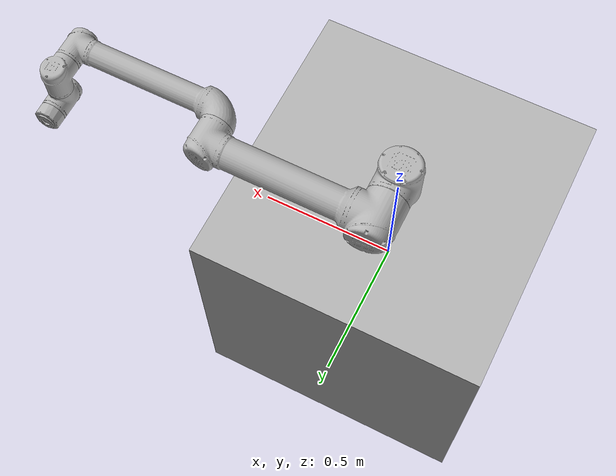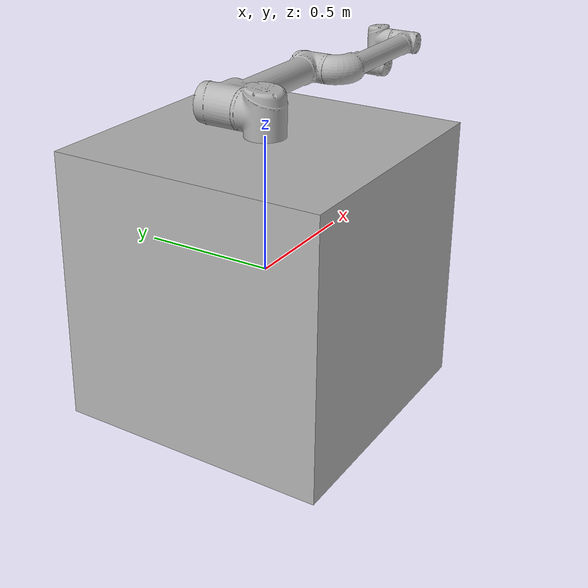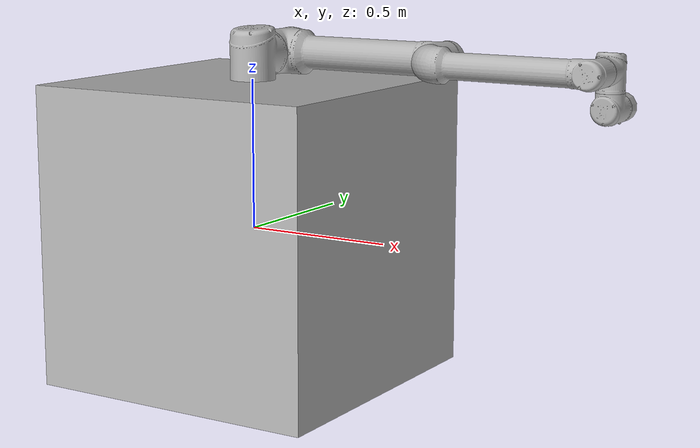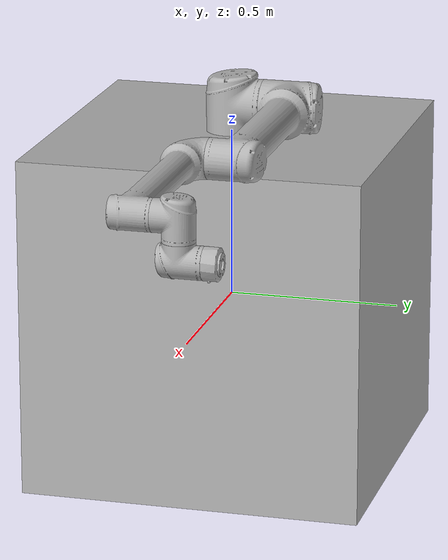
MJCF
<mujoco model="ur10e">
  <compiler angle="radian"/>
  <option cone="elliptic" gravity="0 0 0" impratio="5" timestep="0.01" tolerance="1e-10" />
  <visual>
    <global offwidth="1920" offheight="1080"/>
  </visual>

  <asset>
    <mesh name="base" file="meshes/ur10e/collision/base.stl"/>
    <mesh name="shoulder" file="meshes/ur10e/collision/shoulder.stl"/>
    <mesh name="upperarm" file="meshes/ur10e/collision/upperarm.stl"/>
    <mesh name="forearm" file="meshes/ur10e/collision/forearm.stl"/>
    <mesh name="wrist1" file="meshes/ur10e/collision/wrist1.stl"/>
    <mesh name="wrist2" file="meshes/ur10e/collision/wrist2.stl"/>
    <mesh name="wrist3" file="meshes/ur10e/collision/wrist3.stl"/>
    <mesh name="cuboid" file="cuboid_0.5x0.5x2.stl"/>
  </asset>

  <worldbody>
    <body name="base_link" pos="0 0 0">
      <freejoint/>
      <inertial pos="0 0 0" mass="104" diaginertia="16.676106 16.676106 16.67125"/>
      <geom size="0.5 0.5 0.5" type="box" contype="2" conaffinity="1" group="1" density="0" rgba="0.7 0.7 0.7 1"/>
      <geom type="mesh" contype="0" conaffinity="0" rgba="0.7 0.7 0.7 1" mesh="base"/>
      <body name="shoulder_link" pos="0 0 0.581">
        <inertial pos="0 0 0" mass="7.778" diaginertia="0.0315 0.0315 0.02188"/>
        <joint name="shoulder_pan_joint" pos="0 0 0" axis="0 0 1" range="-100 100" actuatorfrcrange="-330 330"/> <!-- original range="-6.28318 6.28318" -->
        <geom type="mesh" contype="2" conaffinity="1" group="1" density="0" rgba="0.7 0.7 0.7 1" mesh="shoulder"/>
        <geom type="mesh" contype="0" conaffinity="0" rgba="0.7 0.7 0.7 1" mesh="shoulder"/>
        <body name="upper_arm_link" pos="0 0.176 0" quat="0.707105 0 0.707108 0">
          <inertial pos="0 0 0.3065" mass="12.93" diaginertia="0.42307 0.42307 0.0364"/>
          <joint name="shoulder_lift_joint" pos="0 0 0" axis="0 1 0" range="-100 100" actuatorfrcrange="-330 330"/> <!-- original range="-6.28318 6.28318" -->
          <geom type="mesh" contype="2" conaffinity="1" group="1" density="0" rgba="0.7 0.7 0.7 1" mesh="upperarm"/>
          <geom type="mesh" contype="0" conaffinity="0" rgba="0.7 0.7 0.7 1" mesh="upperarm"/>
          <body name="forearm_link" pos="0 -0.137 0.613">
            <inertial pos="0 0 0.2855" mass="3.87" diaginertia="0.11059 0.11059 0.01088"/>
            <joint name="elbow_joint" pos="0 0 0" axis="0 1 0" range="-100 100" actuatorfrcrange="-150 150"/> <!-- original range="-3.14159 3.14159" -->
            <geom type="mesh" contype="2" conaffinity="1" group="1" density="0" rgba="0.7 0.7 0.7 1" mesh="forearm"/>
            <geom type="mesh" contype="0" conaffinity="0" rgba="0.7 0.7 0.7 1" mesh="forearm"/>
            <body name="wrist_1_link" pos="0 0 0.571" quat="0.707105 0 0.707108 0">
              <inertial pos="0 0.135 0" mass="1.96" diaginertia="0.005108 0.005108 0.0055125"/>
              <joint name="wrist_1_joint" pos="0 0 0" axis="0 1 0" range="-100 100" actuatorfrcrange="-54 54"/> <!-- original range="-6.28318 6.28318" -->
              <geom type="mesh" contype="2" conaffinity="1" group="1" density="0" rgba="0.7 0.7 0.7 1" mesh="wrist1"/>
              <geom type="mesh" contype="0" conaffinity="0" rgba="0.7 0.7 0.7 1" mesh="wrist1"/>
              <body name="wrist_2_link" pos="0 0.135 0">
                <inertial pos="0 0 0.12" mass="1.96" diaginertia="0.005108 0.005108 0.0055125"/>
                <joint name="wrist_2_joint" pos="0 0 0" axis="0 0 1" range="-100 100" actuatorfrcrange="-54 54"/> <!-- original range="-6.28318 6.28318" -->
                <geom type="mesh" contype="2" conaffinity="1" group="1" density="0" rgba="0.7 0.7 0.7 1" mesh="wrist2"/>
                <geom type="mesh" contype="0" conaffinity="0" rgba="0.7 0.7 0.7 1" mesh="wrist2"/>
                <body name="wrist_3_link" pos="0 0 0.12">
                  <inertial pos="0 0.092 0" quat="0.7071068 0.7071068 0 0" mass="10.202" diaginertia="0.010144 0.010144 0.010205"/>
                  <joint name="wrist_3_joint" pos="0 0 0" axis="0 1 0" range="-100 100" actuatorfrcrange="-54 54"/> <!-- original range="-6.28318 6.28318" -->
                  <geom type="mesh" contype="2" conaffinity="1" group="1" density="0" rgba="0.7 0.7 0.7 1" mesh="wrist3"/>
                  <geom type="mesh" contype="0" conaffinity="0" rgba="0.7 0.7 0.7 1" mesh="wrist3"/>
                </body>
              </body>
            </body>
          </body>
        </body>
      </body>
    </body>
  </worldbody>

  <actuator>
    <general ctrllimited="true" ctrlrange="-330 330" forcelimited="true" forcerange="-330 330" joint="shoulder_pan_joint" name="shoulder_pan_T"/>
    <general ctrllimited="true" ctrlrange="-330 330" forcelimited="true" forcerange="-330 330" joint="shoulder_lift_joint" name="shoulder_lift_T"/>
    <general ctrllimited="true" ctrlrange="-150 150" forcelimited="true" forcerange="-150 150" joint="elbow_joint" name="elbow_T"/>
    <general ctrllimited="true" ctrlrange="-54 54" forcelimited="true" forcerange="-54 54" joint="wrist_1_joint" name="wrist_1_T"/>
    <general ctrllimited="true" ctrlrange="-54 54" forcelimited="true" forcerange="-54 54" joint="wrist_2_joint" name="wrist_2_T"/>
    <general ctrllimited="true" ctrlrange="-54 54" forcelimited="true" forcerange="-54 54" joint="wrist_3_joint" name="wrist_3_T"/>
  </actuator>
  <sensor>
    <!-- 각 관절의 위치(각도)를 측정 -->
    <jointpos joint="shoulder_pan_joint" name="shoulder_pan_pos"/>
    <jointpos joint="shoulder_lift_joint" name="shoulder_lift_pos"/>
    <jointpos joint="elbow_joint" name="elbow_pos"/>
    <jointpos joint="wrist_1_joint" name="wrist_1_pos"/>
    <jointpos joint="wrist_2_joint" name="wrist_2_pos"/>
    <jointpos joint="wrist_3_joint" name="wrist_3_pos"/>

    <!-- 각 관절의 속도(angular velocity)를 측정 -->
    <jointvel joint="shoulder_pan_joint" name="shoulder_pan_vel"/>
    <jointvel joint="shoulder_lift_joint" name="shoulder_lift_vel"/>
    <jointvel joint="elbow_joint" name="elbow_vel"/>
    <jointvel joint="wrist_1_joint" name="wrist_1_vel"/>
    <jointvel joint="wrist_2_joint" name="wrist_2_vel"/>
    <jointvel joint="wrist_3_joint" name="wrist_3_vel"/>
  </sensor>

</mujoco>
